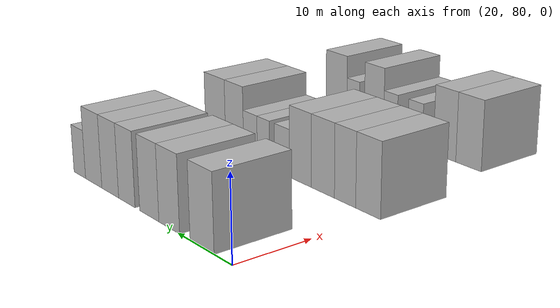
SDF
<sdf version="1.6">
 <world name="default">
  <model name="building_86">
   <static>1</static>
   <pose>25.0000 85.4410 0 0.000000 0.000000 0.000000</pose>
   <link name="link">
    <pose>0 0 4.50 0 0 0</pose>
    <collision name="collision"><geometry><box><size>10.0000 4.4057 9.0000</size></box></geometry></collision>
    <visual name="visual">
     <cast_shadows>0</cast_shadows>
     <geometry><box><size>10.0000 4.4057 9.0000</size></box></geometry>
     <material>
      <script>
       <uri>model://HANNAS_wall/materials/scripts</uri>
       <uri>model://HANNAS_wall/materials/textures</uri>
       <name>vrc/HANNAS_wall</name>
      </script>
     </material>
    </visual>
   </link>
  </model>
  <model name="building_87">
   <static>1</static>
   <pose>25.0000 91.6911 0 0.000000 0.000000 0.000000</pose>
   <link name="link">
    <pose>0 0 4.50 0 0 0</pose>
    <collision name="collision"><geometry><box><size>10.0000 4.0946 9.0000</size></box></geometry></collision>
    <visual name="visual">
     <cast_shadows>0</cast_shadows>
     <geometry><box><size>10.0000 4.0946 9.0000</size></box></geometry>
     <material>
      <script>
       <uri>model://HANNAS_wall/materials/scripts</uri>
       <uri>model://HANNAS_wall/materials/textures</uri>
       <name>vrc/HANNAS_wall</name>
      </script>
     </material>
    </visual>
   </link>
  </model>
  <model name="building_88">
   <static>1</static>
   <pose>25.0000 95.7293 0 0.000000 0.000000 0.000000</pose>
   <link name="link">
    <pose>0 0 4.50 0 0 0</pose>
    <collision name="collision"><geometry><box><size>10.0000 3.9817 9.0000</size></box></geometry></collision>
    <visual name="visual">
     <cast_shadows>0</cast_shadows>
     <geometry><box><size>10.0000 3.9817 9.0000</size></box></geometry>
     <material>
      <script>
       <uri>model://HANNAS_wall/materials/scripts</uri>
       <uri>model://HANNAS_wall/materials/textures</uri>
       <name>vrc/HANNAS_wall</name>
      </script>
     </material>
    </visual>
   </link>
  </model>
  <model name="building_89">
   <static>1</static>
   <pose>25.0000 100.5229 0 0.000000 0.000000 0.000000</pose>
   <link name="link">
    <pose>0 0 4.50 0 0 0</pose>
    <collision name="collision"><geometry><box><size>10.0000 3.6054 9.0000</size></box></geometry></collision>
    <visual name="visual">
     <cast_shadows>0</cast_shadows>
     <geometry><box><size>10.0000 3.6054 9.0000</size></box></geometry>
     <material>
      <script>
       <uri>model://HANNAS_wall/materials/scripts</uri>
       <uri>model://HANNAS_wall/materials/textures</uri>
       <name>vrc/HANNAS_wall</name>
      </script>
     </material>
    </visual>
   </link>
  </model>
  <model name="building_90">
   <static>1</static>
   <pose>25.0000 104.2422 0 0.000000 0.000000 0.000000</pose>
   <link name="link">
    <pose>0 0 4.50 0 0 0</pose>
    <collision name="collision"><geometry><box><size>10.0000 3.8333 9.0000</size></box></geometry></collision>
    <visual name="visual">
     <cast_shadows>0</cast_shadows>
     <geometry><box><size>10.0000 3.8333 9.0000</size></box></geometry>
     <material>
      <script>
       <uri>model://HANNAS_wall/materials/scripts</uri>
       <uri>model://HANNAS_wall/materials/textures</uri>
       <name>vrc/HANNAS_wall</name>
      </script>
     </material>
    </visual>
   </link>
  </model>
  <model name="building_91">
   <static>1</static>
   <pose>25.0000 108.1077 0 0.000000 0.000000 0.000000</pose>
   <link name="link">
    <pose>0 0 4.50 0 0 0</pose>
    <collision name="collision"><geometry><box><size>10.0000 3.8977 9.0000</size></box></geometry></collision>
    <visual name="visual">
     <cast_shadows>0</cast_shadows>
     <geometry><box><size>10.0000 3.8977 9.0000</size></box></geometry>
     <material>
      <script>
       <uri>model://HANNAS_wall/materials/scripts</uri>
       <uri>model://HANNAS_wall/materials/textures</uri>
       <name>vrc/HANNAS_wall</name>
      </script>
     </material>
    </visual>
   </link>
  </model>
  <model name="building_92">
   <static>1</static>
   <pose>25.0000 111.4803 0 0.000000 0.000000 0.000000</pose>
   <link name="link">
    <pose>0 0 3.00 0 0 0</pose>
    <collision name="collision"><geometry><box><size>10.0000 2.8475 6.0000</size></box></geometry></collision>
    <visual name="visual">
     <cast_shadows>0</cast_shadows>
     <geometry><box><size>10.0000 2.8475 6.0000</size></box></geometry>
     <material>
      <script>
       <uri>model://HANNAS_wall/materials/scripts</uri>
       <uri>model://HANNAS_wall/materials/textures</uri>
       <name>vrc/HANNAS_wall</name>
      </script>
     </material>
    </visual>
   </link>
  </model>
  <model name="building_200">
   <static>1</static>
   <pose>44.0000 81.2546 0 0.000000 0.000000 0.000000</pose>
   <link name="link">
    <pose>0 0 4.50 0 0 0</pose>
    <collision name="collision"><geometry><box><size>10.0000 4.1120 9.0000</size></box></geometry></collision>
    <visual name="visual">
     <cast_shadows>0</cast_shadows>
     <geometry><box><size>10.0000 4.1120 9.0000</size></box></geometry>
     <material>
      <script>
       <uri>model://HANNAS_wall/materials/scripts</uri>
       <uri>model://HANNAS_wall/materials/textures</uri>
       <name>vrc/HANNAS_wall</name>
      </script>
     </material>
    </visual>
   </link>
  </model>
  <model name="building_201">
   <static>1</static>
   <pose>44.0000 85.1392 0 0.000000 0.000000 0.000000</pose>
   <link name="link">
    <pose>0 0 4.50 0 0 0</pose>
    <collision name="collision"><geometry><box><size>10.0000 3.6573 9.0000</size></box></geometry></collision>
    <visual name="visual">
     <cast_shadows>0</cast_shadows>
     <geometry><box><size>10.0000 3.6573 9.0000</size></box></geometry>
     <material>
      <script>
       <uri>model://HANNAS_wall/materials/scripts</uri>
       <uri>model://HANNAS_wall/materials/textures</uri>
       <name>vrc/HANNAS_wall</name>
      </script>
     </material>
    </visual>
   </link>
  </model>
  <model name="building_202">
   <static>1</static>
   <pose>44.0000 89.0644 0 0.000000 0.000000 0.000000</pose>
   <link name="link">
    <pose>0 0 4.50 0 0 0</pose>
    <collision name="collision"><geometry><box><size>10.0000 4.1931 9.0000</size></box></geometry></collision>
    <visual name="visual">
     <cast_shadows>0</cast_shadows>
     <geometry><box><size>10.0000 4.1931 9.0000</size></box></geometry>
     <material>
      <script>
       <uri>model://HANNAS_wall/materials/scripts</uri>
       <uri>model://HANNAS_wall/materials/textures</uri>
       <name>vrc/HANNAS_wall</name>
      </script>
     </material>
    </visual>
   </link>
  </model>
  <model name="building_203">
   <static>1</static>
   <pose>44.0000 93.1989 0 0.000000 0.000000 0.000000</pose>
   <link name="link">
    <pose>0 0 4.50 0 0 0</pose>
    <collision name="collision"><geometry><box><size>10.0000 4.0758 9.0000</size></box></geometry></collision>
    <visual name="visual">
     <cast_shadows>0</cast_shadows>
     <geometry><box><size>10.0000 4.0758 9.0000</size></box></geometry>
     <material>
      <script>
       <uri>model://HANNAS_wall/materials/scripts</uri>
       <uri>model://HANNAS_wall/materials/textures</uri>
       <name>vrc/HANNAS_wall</name>
      </script>
     </material>
    </visual>
   </link>
  </model>
  <model name="building_204">
   <static>1</static>
   <pose>44.0000 96.6870 0 0.000000 0.000000 0.000000</pose>
   <link name="link">
    <pose>0 0 3.00 0 0 0</pose>
    <collision name="collision"><geometry><box><size>10.0000 2.9004 6.0000</size></box></geometry></collision>
    <visual name="visual">
     <cast_shadows>0</cast_shadows>
     <geometry><box><size>10.0000 2.9004 6.0000</size></box></geometry>
     <material>
      <script>
       <uri>model://HANNAS_wall/materials/scripts</uri>
       <uri>model://HANNAS_wall/materials/textures</uri>
       <name>vrc/HANNAS_wall</name>
      </script>
     </material>
    </visual>
   </link>
  </model>
  <model name="building_205">
   <static>1</static>
   <pose>44.0000 100.3880 0 0.000000 0.000000 0.000000</pose>
   <link name="link">
    <pose>0 0 3.00 0 0 0</pose>
    <collision name="collision"><geometry><box><size>10.0000 2.5015 6.0000</size></box></geometry></collision>
    <visual name="visual">
     <cast_shadows>0</cast_shadows>
     <geometry><box><size>10.0000 2.5015 6.0000</size></box></geometry>
     <material>
      <script>
       <uri>model://HANNAS_wall/materials/scripts</uri>
       <uri>model://HANNAS_wall/materials/textures</uri>
       <name>vrc/HANNAS_wall</name>
      </script>
     </material>
    </visual>
   </link>
  </model>
  <model name="building_206">
   <static>1</static>
   <pose>44.0000 103.0746 0 0.000000 0.000000 0.000000</pose>
   <link name="link">
    <pose>0 0 3.00 0 0 0</pose>
    <collision name="collision"><geometry><box><size>10.0000 2.8717 6.0000</size></box></geometry></collision>
    <visual name="visual">
     <cast_shadows>0</cast_shadows>
     <geometry><box><size>10.0000 2.8717 6.0000</size></box></geometry>
     <material>
      <script>
       <uri>model://HANNAS_wall/materials/scripts</uri>
       <uri>model://HANNAS_wall/materials/textures</uri>
       <name>vrc/HANNAS_wall</name>
      </script>
     </material>
    </visual>
   </link>
  </model>
  <model name="building_207">
   <static>1</static>
   <pose>44.0000 106.4565 0 0.000000 0.000000 0.000000</pose>
   <link name="link">
    <pose>0 0 4.50 0 0 0</pose>
    <collision name="collision"><geometry><box><size>10.0000 3.8921 9.0000</size></box></geometry></collision>
    <visual name="visual">
     <cast_shadows>0</cast_shadows>
     <geometry><box><size>10.0000 3.8921 9.0000</size></box></geometry>
     <material>
      <script>
       <uri>model://HANNAS_wall/materials/scripts</uri>
       <uri>model://HANNAS_wall/materials/textures</uri>
       <name>vrc/HANNAS_wall</name>
      </script>
     </material>
    </visual>
   </link>
  </model>
  <model name="building_208">
   <static>1</static>
   <pose>44.0000 110.6378 0 0.000000 0.000000 0.000000</pose>
   <link name="link">
    <pose>0 0 4.50 0 0 0</pose>
    <collision name="collision"><geometry><box><size>10.0000 4.4704 9.0000</size></box></geometry></collision>
    <visual name="visual">
     <cast_shadows>0</cast_shadows>
     <geometry><box><size>10.0000 4.4704 9.0000</size></box></geometry>
     <material>
      <script>
       <uri>model://HANNAS_wall/materials/scripts</uri>
       <uri>model://HANNAS_wall/materials/textures</uri>
       <name>vrc/HANNAS_wall</name>
      </script>
     </material>
    </visual>
   </link>
  </model>
  <model name="building_327">
   <static>1</static>
   <pose>63.0000 84.3346 0 0.000000 0.000000 0.000000</pose>
   <link name="link">
    <pose>0 0 4.50 0 0 0</pose>
    <collision name="collision"><geometry><box><size>10.0000 4.2461 9.0000</size></box></geometry></collision>
    <visual name="visual">
     <cast_shadows>0</cast_shadows>
     <geometry><box><size>10.0000 4.2461 9.0000</size></box></geometry>
     <material>
      <script>
       <uri>model://HANNAS_wall/materials/scripts</uri>
       <uri>model://HANNAS_wall/materials/textures</uri>
       <name>vrc/HANNAS_wall</name>
      </script>
     </material>
    </visual>
   </link>
  </model>
  <model name="building_328">
   <static>1</static>
   <pose>63.0000 88.4021 0 0.000000 0.000000 0.000000</pose>
   <link name="link">
    <pose>0 0 4.50 0 0 0</pose>
    <collision name="collision"><geometry><box><size>10.0000 3.8888 9.0000</size></box></geometry></collision>
    <visual name="visual">
     <cast_shadows>0</cast_shadows>
     <geometry><box><size>10.0000 3.8888 9.0000</size></box></geometry>
     <material>
      <script>
       <uri>model://HANNAS_wall/materials/scripts</uri>
       <uri>model://HANNAS_wall/materials/textures</uri>
       <name>vrc/HANNAS_wall</name>
      </script>
     </material>
    </visual>
   </link>
  </model>
  <model name="building_329">
   <static>1</static>
   <pose>63.0000 93.6779 0 0.000000 0.000000 0.000000</pose>
   <link name="link">
    <pose>0 0 3.00 0 0 0</pose>
    <collision name="collision"><geometry><box><size>10.0000 2.6627 6.0000</size></box></geometry></collision>
    <visual name="visual">
     <cast_shadows>0</cast_shadows>
     <geometry><box><size>10.0000 2.6627 6.0000</size></box></geometry>
     <material>
      <script>
       <uri>model://HANNAS_wall/materials/scripts</uri>
       <uri>model://HANNAS_wall/materials/textures</uri>
       <name>vrc/HANNAS_wall</name>
      </script>
     </material>
    </visual>
   </link>
  </model>
  <model name="building_330">
   <static>1</static>
   <pose>63.0000 98.3093 0 0.000000 0.000000 0.000000</pose>
   <link name="link">
    <pose>0 0 3.00 0 0 0</pose>
    <collision name="collision"><geometry><box><size>10.0000 2.6002 6.0000</size></box></geometry></collision>
    <visual name="visual">
     <cast_shadows>0</cast_shadows>
     <geometry><box><size>10.0000 2.6002 6.0000</size></box></geometry>
     <material>
      <script>
       <uri>model://HANNAS_wall/materials/scripts</uri>
       <uri>model://HANNAS_wall/materials/textures</uri>
       <name>vrc/HANNAS_wall</name>
      </script>
     </material>
    </visual>
   </link>
  </model>
  <model name="building_331">
   <static>1</static>
   <pose>63.0000 101.5141 0 0.000000 0.000000 0.000000</pose>
   <link name="link">
    <pose>0 0 4.50 0 0 0</pose>
    <collision name="collision"><geometry><box><size>10.0000 3.8093 9.0000</size></box></geometry></collision>
    <visual name="visual">
     <cast_shadows>0</cast_shadows>
     <geometry><box><size>10.0000 3.8093 9.0000</size></box></geometry>
     <material>
      <script>
       <uri>model://HANNAS_wall/materials/scripts</uri>
       <uri>model://HANNAS_wall/materials/textures</uri>
       <name>vrc/HANNAS_wall</name>
      </script>
     </material>
    </visual>
   </link>
  </model>
  <model name="building_332">
   <static>1</static>
   <pose>63.0000 105.7065 0 0.000000 0.000000 0.000000</pose>
   <link name="link">
    <pose>0 0 3.00 0 0 0</pose>
    <collision name="collision"><geometry><box><size>10.0000 2.5754 6.0000</size></box></geometry></collision>
    <visual name="visual">
     <cast_shadows>0</cast_shadows>
     <geometry><box><size>10.0000 2.5754 6.0000</size></box></geometry>
     <material>
      <script>
       <uri>model://HANNAS_wall/materials/scripts</uri>
       <uri>model://HANNAS_wall/materials/textures</uri>
       <name>vrc/HANNAS_wall</name>
      </script>
     </material>
    </visual>
   </link>
  </model>
  <model name="building_333">
   <static>1</static>
   <pose>63.0000 109.1811 0 0.000000 0.000000 0.000000</pose>
   <link name="link">
    <pose>0 0 4.50 0 0 0</pose>
    <collision name="collision"><geometry><box><size>10.0000 4.3737 9.0000</size></box></geometry></collision>
    <visual name="visual">
     <cast_shadows>0</cast_shadows>
     <geometry><box><size>10.0000 4.3737 9.0000</size></box></geometry>
     <material>
      <script>
       <uri>model://HANNAS_wall/materials/scripts</uri>
       <uri>model://HANNAS_wall/materials/textures</uri>
       <name>vrc/HANNAS_wall</name>
      </script>
     </material>
    </visual>
   </link>
  </model>
 </world>
</sdf>
